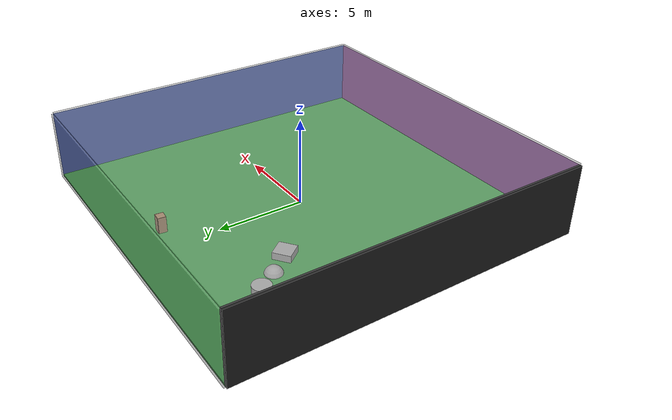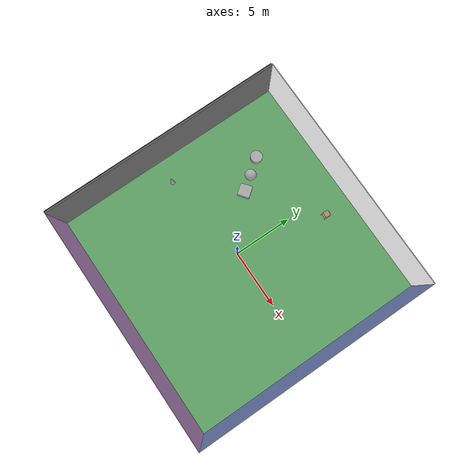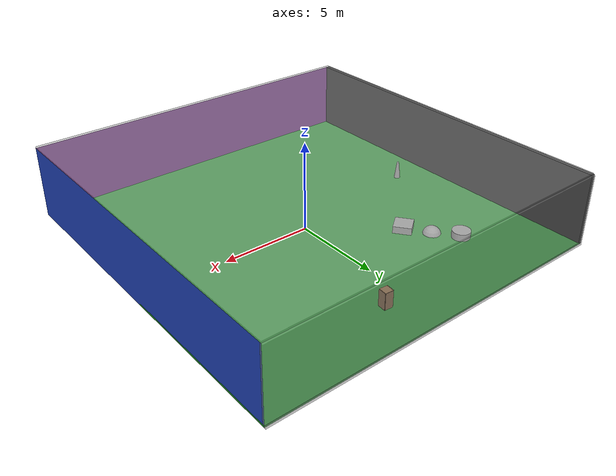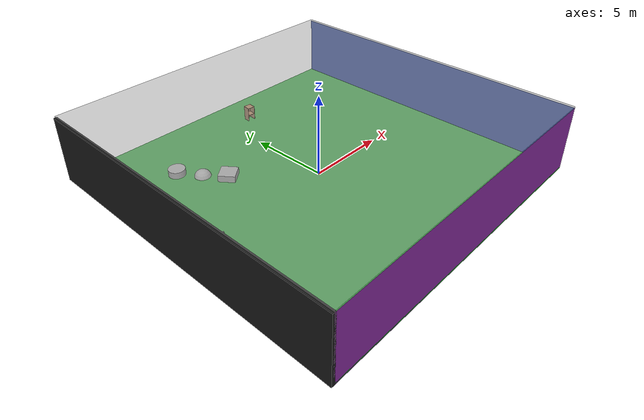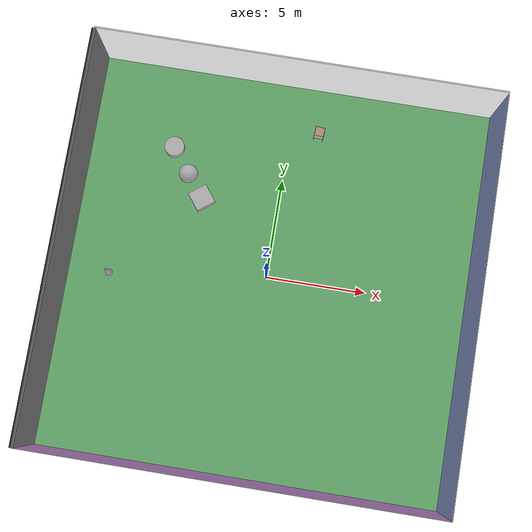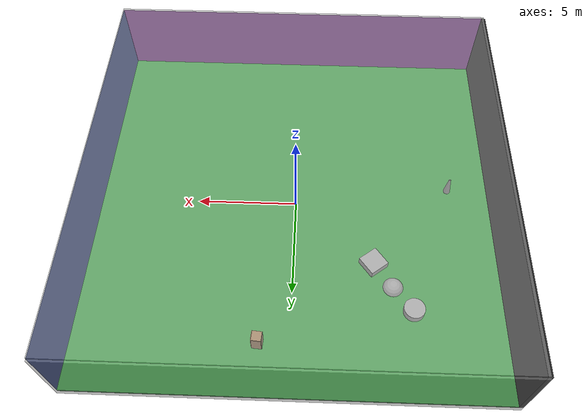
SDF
<sdf version="1.4">
 <world name="default">
  <physics type="ode">
   <max_step_size>0.001</max_step_size>
   <real_time_factor>1</real_time_factor>
   <real_time_update_rate>1000</real_time_update_rate>
   <gravity>0 0 -9.8</gravity>
  </physics>
  <scene><ambient>0.4 0.4 0.4 1</ambient><background>0.7 0.7 0.7 1</background><shadows>1</shadows></scene>
  <model name="Surrounding">
   <static>1</static>
   <link name="Ceiling">
    <collision name="Ceiling_Collision"><geometry><box><size>20 20 0.1</size></box></geometry></collision>
    <visual name="Ceiling_Visual">
     <geometry><box><size>20 20 0.1</size></box></geometry>
     <material>
      <script><uri>file://media/materials/scripts/gazebo.material</uri><name>Gazebo/GreyTransparent</name></script>
     </material>
    </visual>
    <pose>0 0 4.05 0 0 0</pose>
   </link>
   <link name="Wall_South">
    <collision name="Wall_South_Collision">
     <geometry><box><size>20 0 4</size></box></geometry>
     <pose>0 0 2 0 -0 0</pose>
    </collision>
    <visual name="Wall_South_Visual">
     <pose>0 0 2 0 -0 0</pose>
     <geometry><box><size>20 0 4</size></box></geometry>
     <material>
      <script><uri>file://media/materials/scripts/gazebo.material</uri><name>Gazebo/PurpleGlow</name></script>
     </material>
    </visual>
    <velocity_decay><linear>0</linear><angular>0</angular></velocity_decay>
    <pose>0 -10 0 0 -0 0</pose>
   </link>
   <link name="Wall_East">
    <collision name="Wall_21_Collision">
     <geometry><box><size>20 0 4</size></box></geometry>
     <pose>0 0 2 0 -0 0</pose>
    </collision>
    <visual name="Wall_21_Visual">
     <pose>0 0 2 0 -0 0</pose>
     <geometry><box><size>20 0 4</size></box></geometry>
     <material>
      <script><uri>file://media/materials/scripts/gazebo.material</uri><name>Gazebo/BlueLaser</name></script>
     </material>
    </visual>
    <velocity_decay><linear>0</linear><angular>0</angular></velocity_decay>
    <pose>10 0 0 0 -0 1.5708</pose>
   </link>
   <link name="Wall_North">
    <collision name="Wall_22_Collision">
     <geometry><box><size>20 0.2 4</size></box></geometry>
     <pose>0 0 2 0 -0 0</pose>
    </collision>
    <visual name="Wall_22_Visual">
     <pose>0 0 2 0 -0 0</pose>
     <geometry><box><size>20 0.2 4</size></box></geometry>
     <material>
      <script><uri>file://media/materials/scripts/gazebo.material</uri><name>Gazebo/GreyTransparent</name></script>
     </material>
    </visual>
    <velocity_decay><linear>0</linear><angular>0</angular></velocity_decay>
    <pose>0 10 0 0 -0 0</pose>
   </link>
   <link name="Wall_West">
    <collision name="Wall_23_Collision">
     <geometry><box><size>20 0.2 4</size></box></geometry>
     <pose>0 0 2 0 -0 0</pose>
    </collision>
    <visual name="Wall_23_Visual">
     <pose>0 0 2 0 -0 0</pose>
     <geometry><box><size>20 0.2 4</size></box></geometry>
     <material>
      <script><uri>file://media/materials/scripts/gazebo.material</uri><name>Gazebo/FlatBlack</name></script>
     </material>
    </visual>
    <velocity_decay><linear>0</linear><angular>0</angular></velocity_decay>
    <pose>-10 0 0 0 0 -1.5708</pose>
   </link>
   <link name="Ground_link">
    <collision name="collision">
     <pose>0 0 .05 0 -0 0</pose>
     <geometry><box><size>20 20 0.1</size></box></geometry>
    </collision>
    <visual name="visual">
     <pose>0 0 .05 0 -0 0</pose>
     <geometry><box><size>20 20 0.1</size></box></geometry>
     <material>
      <script><uri>file://media/materials/scripts/gazebo.material</uri><name>Gazebo/GreenGlow</name></script>
     </material>
    </visual>
   </link>
   <static>1</static>
  </model>
  <spherical_coordinates>
   <surface_model>EARTH_WGS84</surface_model>
   <latitude_deg>0</latitude_deg>
   <longitude_deg>0</longitude_deg>
   <elevation>0</elevation>
   <heading_deg>0</heading_deg>
  </spherical_coordinates>
  <light name="lightball_0" type="diffuse">
   <diffuse>0.8 0.8 0.8 1</diffuse>
   <specular>0.2 0.2 0.2 1</specular>
   <attenuation>
    <range>100</range>
    <constant>0.7</constant>
    <linear>0.01</linear>
    <quadratic>0.001</quadratic>
   </attenuation>
   <direction>-0.5 0.1 -0.9</direction>
   <pose>-9.18031304424 -5.11971739021 1.4013924411 0 0 0</pose>
  </light>
  <light name="lightball_1" type="diffuse">
   <diffuse>0.8 0.8 0.8 1</diffuse>
   <specular>0.2 0.2 0.2 1</specular>
   <attenuation>
    <range>100</range>
    <constant>0.7</constant>
    <linear>0.01</linear>
    <quadratic>0.001</quadratic>
   </attenuation>
   <direction>-0.5 0.1 -0.9</direction>
   <pose>-6.09508611985 6.75004283381 2.43217795593 0 0 0</pose>
  </light>
  <light name="lightball_2" type="diffuse">
   <diffuse>0.8 0.8 0.8 1</diffuse>
   <specular>0.2 0.2 0.2 1</specular>
   <attenuation>
    <range>100</range>
    <constant>0.7</constant>
    <linear>0.01</linear>
    <quadratic>0.001</quadratic>
   </attenuation>
   <direction>-0.5 0.1 -0.9</direction>
   <pose>-2.40722658138 8.73240657294 3.50360275337 0 0 0</pose>
  </light>
  <light name="lightball_3" type="diffuse">
   <diffuse>0.8 0.8 0.8 1</diffuse>
   <specular>0.2 0.2 0.2 1</specular>
   <attenuation>
    <range>100</range>
    <constant>0.7</constant>
    <linear>0.01</linear>
    <quadratic>0.001</quadratic>
   </attenuation>
   <direction>-0.5 0.1 -0.9</direction>
   <pose>8.27858671687 0.215876496298 1.71272421484 0 0 0</pose>
  </light>
  <light name="lightball_4" type="diffuse">
   <diffuse>0.8 0.8 0.8 1</diffuse>
   <specular>0.2 0.2 0.2 1</specular>
   <attenuation>
    <range>100</range>
    <constant>0.7</constant>
    <linear>0.01</linear>
    <quadratic>0.001</quadratic>
   </attenuation>
   <direction>-0.5 0.1 -0.9</direction>
   <pose>-4.12074202468 -8.33376139351 1.57614794599 0 0 0</pose>
  </light>
  <light name="lightball_5" type="diffuse">
   <diffuse>0.8 0.8 0.8 1</diffuse>
   <specular>0.2 0.2 0.2 1</specular>
   <attenuation>
    <range>100</range>
    <constant>0.7</constant>
    <linear>0.01</linear>
    <quadratic>0.001</quadratic>
   </attenuation>
   <direction>-0.5 0.1 -0.9</direction>
   <pose>-5.41753024595 -6.7885583806 2.5400519803 0 0 0</pose>
  </light>
  <light name="lightball_6" type="diffuse">
   <diffuse>0.8 0.8 0.8 1</diffuse>
   <specular>0.2 0.2 0.2 1</specular>
   <attenuation>
    <range>100</range>
    <constant>0.7</constant>
    <linear>0.01</linear>
    <quadratic>0.001</quadratic>
   </attenuation>
   <direction>-0.5 0.1 -0.9</direction>
   <pose>-5.26587159155 4.24588983588 1.2501534553 0 0 0</pose>
  </light>
  <light name="lightball_7" type="diffuse">
   <diffuse>0.8 0.8 0.8 1</diffuse>
   <specular>0.2 0.2 0.2 1</specular>
   <attenuation>
    <range>100</range>
    <constant>0.7</constant>
    <linear>0.01</linear>
    <quadratic>0.001</quadratic>
   </attenuation>
   <direction>-0.5 0.1 -0.9</direction>
   <pose>-3.36316518487 -8.25478304094 1.15887249818 0 0 0</pose>
  </light>
  <light name="lightball_8" type="diffuse">
   <diffuse>0.8 0.8 0.8 1</diffuse>
   <specular>0.2 0.2 0.2 1</specular>
   <attenuation>
    <range>100</range>
    <constant>0.7</constant>
    <linear>0.01</linear>
    <quadratic>0.001</quadratic>
   </attenuation>
   <direction>-0.5 0.1 -0.9</direction>
   <pose>-2.30087252503 1.0504984818 0.831743456647 0 0 0</pose>
  </light>
  <light name="lightball_9" type="diffuse">
   <diffuse>0.8 0.8 0.8 1</diffuse>
   <specular>0.2 0.2 0.2 1</specular>
   <attenuation>
    <range>100</range>
    <constant>0.7</constant>
    <linear>0.01</linear>
    <quadratic>0.001</quadratic>
   </attenuation>
   <direction>-0.5 0.1 -0.9</direction>
   <pose>-8.1857241288 4.47245750205 1.17027565187 0 0 0</pose>
  </light>
  <include>
   <uri>model://construction_cone</uri>
   <pose>-7.85335964614 -1.03525466986 0 0 0 1.12610241619</pose>
  </include>
  <include>
   <uri>model://textured_shapes</uri>
   <pose>-4.78308021063 4.60816762243 0 0 0 0.648527756187</pose>
  </include>
  <include><uri>model://cabinet</uri><pose>1.46812468104 7.5973727305 0 0 0 1.48189826229</pose></include>
 </world>
</sdf>

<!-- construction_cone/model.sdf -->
<sdf version="1.5">
  <model name="Construction Cone">
    <link name="link">
      <collision name="collision">
        <geometry>
          <mesh>
            <scale>10 10 10</scale>
            <uri>file://isr-testbed/construction_cone/meshes/construction_cone.dae</uri>
          </mesh>
        </geometry>
      </collision>
      <visual name="visual">
        <geometry>
          <mesh>
            <scale>10 10 10</scale>
            <uri>file://isr-testbed/construction_cone/meshes/construction_cone.dae</uri>
          </mesh>
        </geometry>
      </visual>
    </link>
  </model>
</sdf>

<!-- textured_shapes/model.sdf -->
<sdf version="1.6">
  <model name="textured_shapes">
    <pose>0 0 0.5 0 0 0</pose>
    <link name="box">
      <pose>0 -1.5 0 0 0 0</pose>
      <collision name="collision">
        <geometry>
          <box>
            <size>1 1 1</size>
          </box>
        </geometry>
      </collision>
      <visual name="visual">
        <geometry>
          <box>
            <size>1 1 1</size>
          </box>
        </geometry>
        <material>
          <script>
            <uri>model://../model_source/models/textured_shapes/materials/scripts</uri>
            <uri>model://../model_source/models/textured_shapes/materials/textures</uri>
            <name>TexturedShape/Squares</name>
          </script>
        </material>
      </visual>
    </link>
    <link name="sphere">
      <collision name="collision">
        <geometry>
          <sphere>
            <radius>0.5</radius>
          </sphere>
        </geometry>
      </collision>
      <visual name="visual">
        <geometry>
          <sphere>
            <radius>0.5</radius>
          </sphere>
        </geometry>
        <material>
          <script>
            <uri>model://../model_source/models/textured_shapes/materials/scripts</uri>
            <uri>model://../model_source/models/textured_shapes/materials/textures</uri>
            <name>TexturedShape/Squares</name>
          </script>
        </material>
      </visual>
    </link>
    <link name="cylinder">
      <pose>0 1.5 0 0 0 0</pose>
      <collision name="collision">
        <geometry>
          <cylinder>
            <radius>0.5</radius>
            <length>1</length>
          </cylinder>
        </geometry>
      </collision>
      <visual name="visual">
        <geometry>
          <cylinder>
            <radius>0.5</radius>
            <length>1</length>
          </cylinder>
        </geometry>
        <material>
          <script>
            <uri>model://../model_source/models/textured_shapes/materials/scripts</uri>
            <uri>model://../model_source/models/textured_shapes/materials/textures</uri>
            <name>TexturedShape/Squares</name>
          </script>
        </material>
      </visual>
    </link>
  </model>
</sdf>

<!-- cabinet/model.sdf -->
<sdf version="1.5">
  <model name="cabinet">
    <static>true</static>
    <link name="cabinet_bottom_plate">
      <inertial>
        <pose>0 0 -1 0 0 0</pose>
        <inertia>
          <ixx>2.050000</ixx>
          <ixy>0</ixy>
          <ixz>0</ixz>
          <iyy>2.050000</iyy>
          <iyz>0</iyz>
          <izz>2.050000</izz>
        </inertia>
        <mass>25.000000</mass>
      </inertial>
      <collision name="cabinet_bottom_plate_geom">
        <pose>0 0 0.010000 0 0 0</pose>
        <geometry>
          <box>
            <size>0.450000 0.450000 0.020000</size>
          </box>
        </geometry>
      </collision>
      <visual name="cabinet_bottom_plate_geom_visual">
        <pose>0 0 0.010000 0 0 0</pose>
        <geometry>
          <box>
            <size>0.450000 0.450000 0.020000</size>
          </box>
        </geometry>
        <material>
          <script>
            <uri>model://media/materials/scripts/gazebo.material</uri>
            <name>Gazebo/Wood</name>
          </script>
        </material>
      </visual>
      <collision name="cabinet_bottom_plate_geom_cabinet_back_plate">
        <pose>0.235000 0 0.510000 0 0 0</pose>
        <geometry>
          <box>
            <size>0.020000 0.450000 1.020000</size>
          </box>
        </geometry>
      </collision>
      <visual name="cabinet_bottom_plate_geom_cabinet_back_plate_visual">
        <pose>0.235000 0 0.510000 0 0 0</pose>
        <geometry>
          <box>
            <size>0.020000 0.450000 1.020000</size>
          </box>
        </geometry>
        <material>
          <script>
            <uri>model://media/materials/scripts/gazebo.material</uri>
            <name>Gazebo/Wood</name>
          </script>
        </material>
      </visual>
      <collision name="cabinet_bottom_plate_geom_cabinet_left_plate">
        <pose>0 0.235000 0.510000 0 0 0</pose>
        <geometry>
          <box>
            <size>0.450000 0.020000 1.020000</size>
          </box>
        </geometry>
      </collision>
      <visual name="cabinet_bottom_plate_geom_cabinet_left_plate_visual">
        <pose>0 0.235000 0.510000 0 0 0</pose>
        <geometry>
          <box>
            <size>0.450000 0.020000 1.020000</size>
          </box>
        </geometry>
        <material>
          <script>
            <uri>model://media/materials/scripts/gazebo.material</uri>
            <name>Gazebo/Wood</name>
          </script>
        </material>
      </visual>
      <collision name="cabinet_bottom_plate_geom_cabinet_middle_plate">
        <pose>0 0 0.510000 0 0 0</pose>
        <geometry>
          <box>
            <size>0.450000 0.450000 0.020000</size>
          </box>
        </geometry>
      </collision>
      <visual name="cabinet_bottom_plate_geom_cabinet_middle_plate_visual">
        <pose>0 0 0.510000 0 0 0</pose>
        <geometry>
          <box>
            <size>0.450000 0.450000 0.020000</size>
          </box>
        </geometry>
        <material>
          <script>
            <uri>model://media/materials/scripts/gazebo.material</uri>
            <name>Gazebo/Wood</name>
          </script>
        </material>
      </visual>
      <collision name="cabinet_bottom_plate_geom_cabinet_right_plate">
        <pose>0 -0.235000 0.510000 0 0 0</pose>
        <geometry>
          <box>
            <size>0.450000 0.020000 1.020000</size>
          </box>
        </geometry>
      </collision>
      <visual name="cabinet_bottom_plate_geom_cabinet_right_plate_visual">
        <pose>0 -0.235000 0.510000 0 0 0</pose>
        <geometry>
          <box>
            <size>0.450000 0.020000 1.020000</size>
          </box>
        </geometry>
        <material>
          <script>
            <uri>model://media/materials/scripts/gazebo.material</uri>
            <name>Gazebo/Wood</name>
          </script>
        </material>
      </visual>
      <collision name="cabinet_bottom_plate_geom_cabinet_top_plate">
        <pose>0 0 1.010000 0 0 0</pose>
        <geometry>
          <box>
            <size>0.450000 0.450000 0.020000</size>
          </box>
        </geometry>
      </collision>
      <visual name="cabinet_bottom_plate_geom_cabinet_top_plate_visual">
        <pose>0 0 1.010000 0 0 0</pose>
        <geometry>
          <box>
            <size>0.450000 0.450000 0.020000</size>
          </box>
        </geometry>
        <material>
          <script>
            <uri>model://media/materials/scripts/gazebo.material</uri>
            <name>Gazebo/Wood</name>
          </script>
        </material>
      </visual>
    </link>
  </model>
</sdf>
